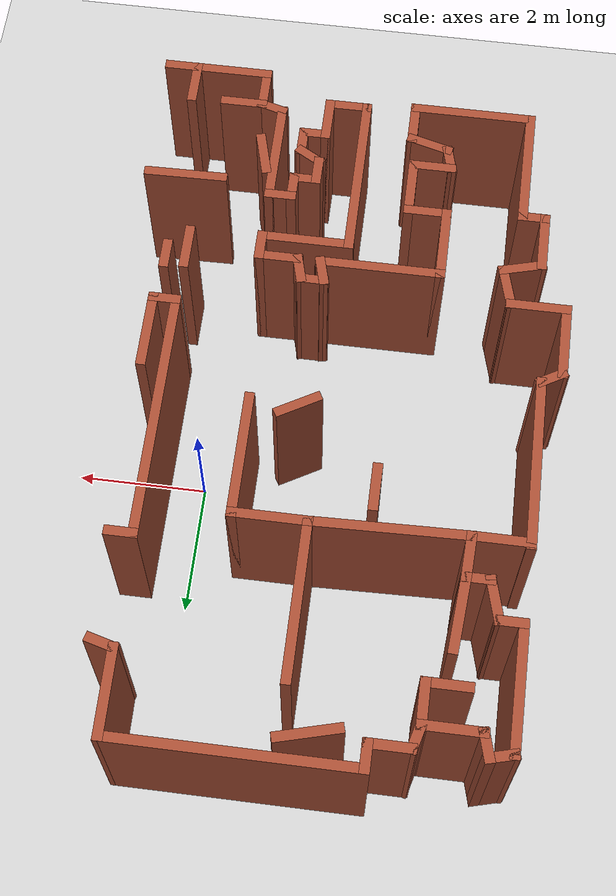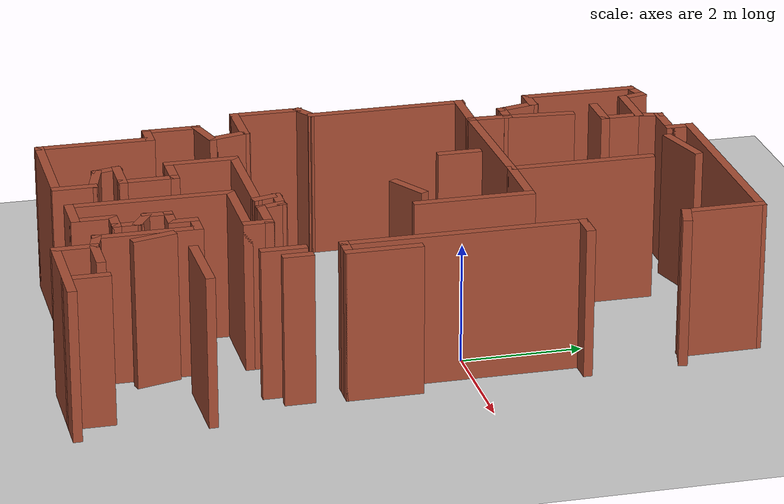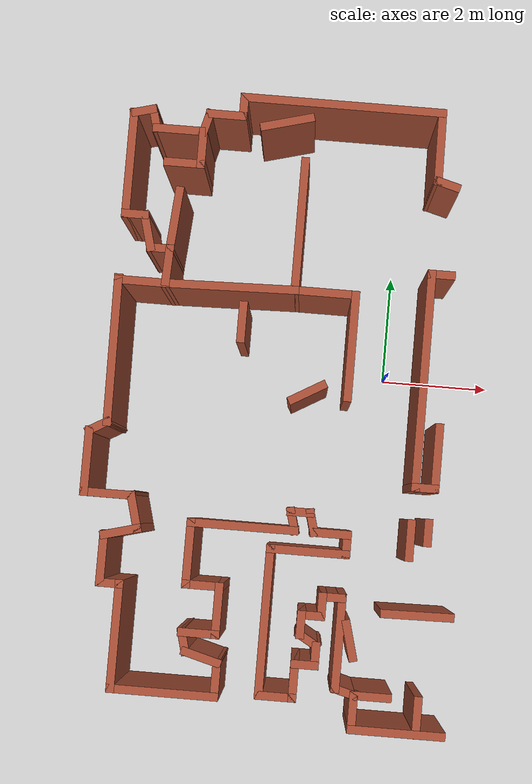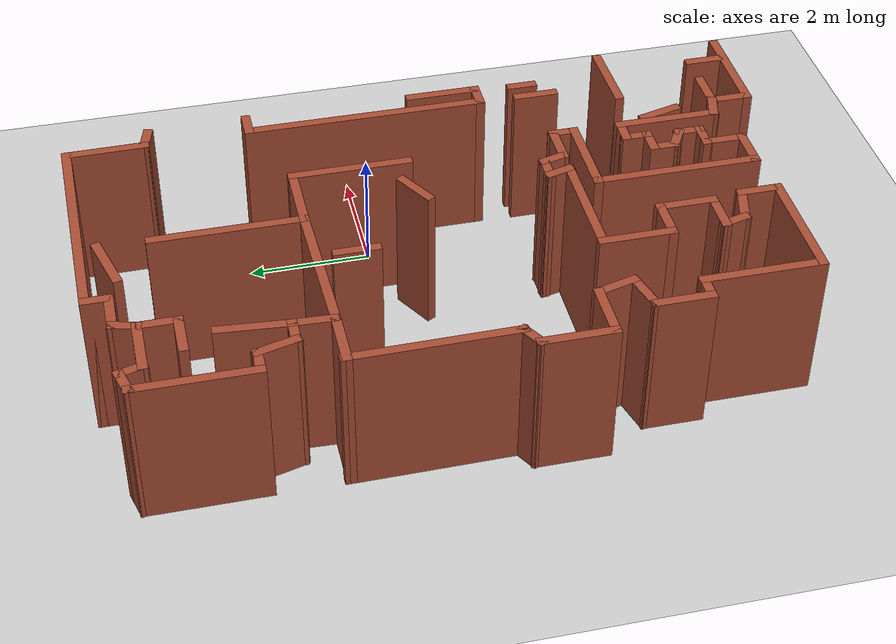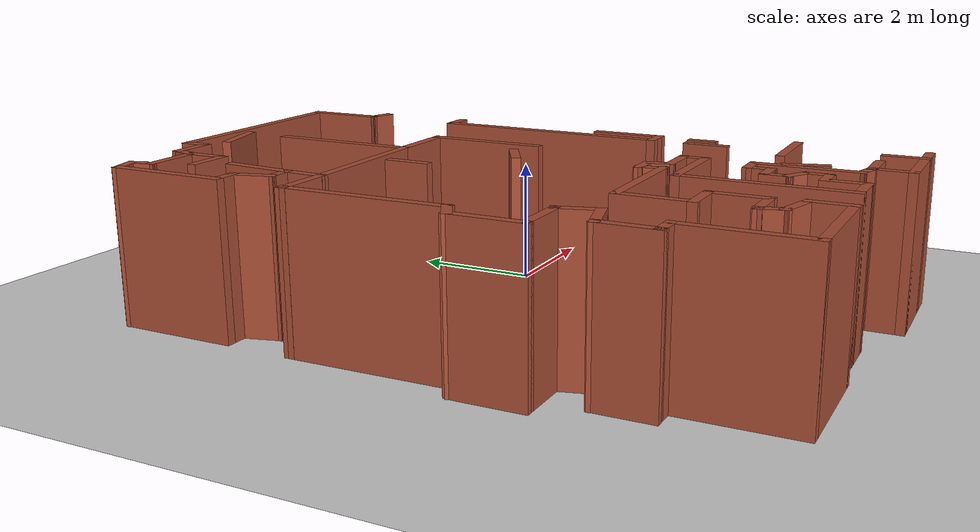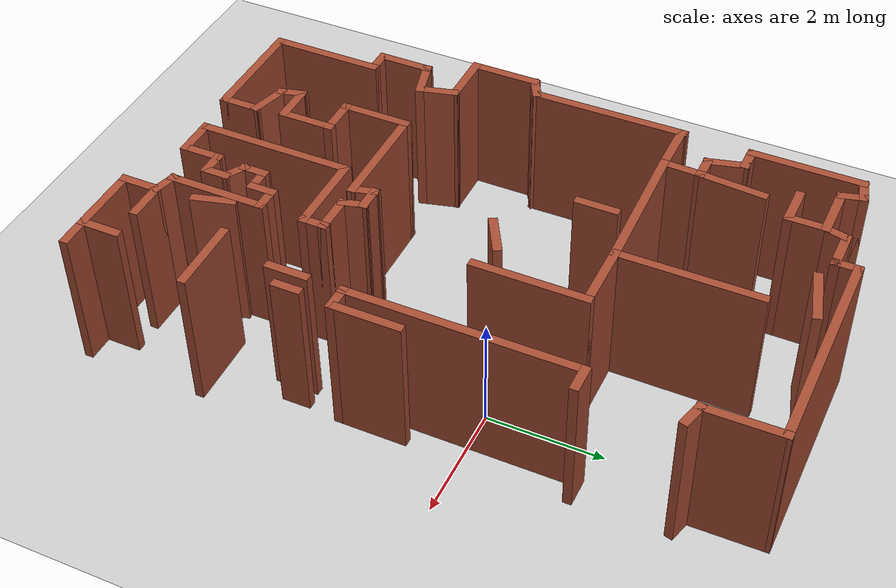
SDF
<sdf version="1.6">
 <world name="default">
  <model name="ground_plane">
   <static>1</static>
   <link name="link">
    <collision name="collision">
     <geometry><plane><normal>0 0 1</normal><size>100 100</size></plane></geometry>
     <surface>
      <contact><collide_bitmask>65535</collide_bitmask></contact>
      <friction><ode><mu>100</mu><mu2>50</mu2></ode></friction>
     </surface>
    </collision>
    <visual name="visual">
     <cast_shadows>0</cast_shadows>
     <geometry><plane><normal>0 0 1</normal><size>100 100</size></plane></geometry>
     <material>
      <script><uri>file://media/materials/scripts/gazebo.material</uri><name>Gazebo/Grey</name></script>
     </material>
    </visual>
   </link>
  </model>
  <model name="map_29">
   <pose>1.33629 -0.887991 0 0 -0 0</pose>
   <link name="Wall_0">
    <collision name="Wall_0_Collision">
     <geometry><box><size>3.75 0.15 2.5</size></box></geometry>
     <pose>0 0 1.25 0 -0 0</pose>
    </collision>
    <visual name="Wall_0_Visual">
     <pose>0 0 1.25 0 -0 0</pose>
     <geometry><box><size>3.75 0.15 2.5</size></box></geometry>
     <material>
      <script><uri>file://media/materials/scripts/gazebo.material</uri><name>Gazebo/Bricks</name></script>
      <ambient>1 1 1 1</ambient>
     </material>
     <meta><layer>0</layer></meta>
    </visual>
    <pose>-2.54851 5.6282 0 0 -0 3.14159</pose>
   </link>
   <link name="Wall_10">
    <collision name="Wall_10_Collision">
     <geometry><box><size>2 0.15 2.5</size></box></geometry>
     <pose>0 0 1.25 0 -0 0</pose>
    </collision>
    <visual name="Wall_10_Visual">
     <pose>0 0 1.25 0 -0 0</pose>
     <geometry><box><size>2 0.15 2.5</size></box></geometry>
     <material>
      <script><uri>file://media/materials/scripts/gazebo.material</uri><name>Gazebo/Bricks</name></script>
      <ambient>1 1 1 1</ambient>
     </material>
     <meta><layer>0</layer></meta>
    </visual>
    <pose>-6.31776 4.26261 0 0 -0 -1.5708</pose>
   </link>
   <link name="Wall_108">
    <collision name="Wall_108_Collision">
     <geometry><box><size>0.75 0.15 2.5</size></box></geometry>
     <pose>0 0 1.25 0 -0 0</pose>
    </collision>
    <visual name="Wall_108_Visual">
     <pose>0 0 1.25 0 -0 0</pose>
     <geometry><box><size>0.75 0.15 2.5</size></box></geometry>
     <material>
      <script><uri>file://media/materials/scripts/gazebo.material</uri><name>Gazebo/Bricks</name></script>
      <ambient>1 1 1 1</ambient>
     </material>
     <meta><layer>0</layer></meta>
    </visual>
    <pose>-0.736808 -2.1126 0 0 -0 1.5708</pose>
   </link>
   <link name="Wall_11">
    <collision name="Wall_11_Collision">
     <geometry><box><size>0.5 0.15 2.5</size></box></geometry>
     <pose>0 0 1.25 0 -0 0</pose>
    </collision>
    <visual name="Wall_11_Visual">
     <pose>0 0 1.25 0 -0 0</pose>
     <geometry><box><size>0.5 0.15 2.5</size></box></geometry>
     <material>
      <script><uri>file://media/materials/scripts/gazebo.material</uri><name>Gazebo/Bricks</name></script>
      <ambient>1 1 1 1</ambient>
     </material>
     <meta><layer>0</layer></meta>
    </visual>
    <pose>-6.14276 3.33761 0 0 -0 0</pose>
   </link>
   <link name="Wall_111">
    <collision name="Wall_111_Collision">
     <geometry><box><size>0.5 0.15 2.5</size></box></geometry>
     <pose>0 0 1.25 0 -0 0</pose>
    </collision>
    <visual name="Wall_111_Visual">
     <pose>0 0 1.25 0 -0 0</pose>
     <geometry><box><size>0.5 0.15 2.5</size></box></geometry>
     <material>
      <script><uri>file://media/materials/scripts/gazebo.material</uri><name>Gazebo/Bricks</name></script>
      <ambient>1 1 1 1</ambient>
     </material>
     <meta><layer>0</layer></meta>
    </visual>
    <pose>-0.431108 -1.9528 0 0 -0 -1.5708</pose>
   </link>
   <link name="Wall_15">
    <collision name="Wall_15_Collision">
     <geometry><box><size>0.75 0.15 2.5</size></box></geometry>
     <pose>0 0 1.25 0 -0 0</pose>
    </collision>
    <visual name="Wall_15_Visual">
     <pose>0 0 1.25 0 -0 0</pose>
     <geometry><box><size>0.75 0.15 2.5</size></box></geometry>
     <material>
      <script><uri>file://media/materials/scripts/gazebo.material</uri><name>Gazebo/Bricks</name></script>
      <ambient>1 1 1 1</ambient>
     </material>
     <meta><layer>0</layer></meta>
    </visual>
    <pose>-5.89011 3.04783 0 0 -0 -1.309</pose>
   </link>
   <link name="Wall_153">
    <collision name="Wall_153_Collision">
     <geometry><box><size>1.25 0.15 2.5</size></box></geometry>
     <pose>0 0 1.25 0 -0 0</pose>
    </collision>
    <visual name="Wall_153_Visual">
     <pose>0 0 1.25 0 -0 0</pose>
     <geometry><box><size>1.25 0.15 2.5</size></box></geometry>
     <material>
      <script><uri>file://media/materials/scripts/gazebo.material</uri><name>Gazebo/Bricks</name></script>
      <ambient>1 1 1 1</ambient>
     </material>
     <meta><layer>0</layer></meta>
    </visual>
    <pose>-0.368319 -0.613111 0 0 -0 -1.5708</pose>
   </link>
   <link name="Wall_154">
    <collision name="Wall_154_Collision">
     <geometry><box><size>0.5 0.15 2.5</size></box></geometry>
     <pose>0 0 1.25 0 -0 0</pose>
    </collision>
    <visual name="Wall_154_Visual">
     <pose>0 0 1.25 0 -0 0</pose>
     <geometry><box><size>0.5 0.15 2.5</size></box></geometry>
     <material>
      <script><uri>file://media/materials/scripts/gazebo.material</uri><name>Gazebo/Bricks</name></script>
      <ambient>1 1 1 1</ambient>
     </material>
     <meta><layer>0</layer></meta>
    </visual>
    <pose>-0.543319 -1.16311 0 0 -0 3.14159</pose>
   </link>
   <link name="Wall_155">
    <collision name="Wall_155_Collision">
     <geometry><box><size>4 0.15 2.5</size></box></geometry>
     <pose>0 0 1.25 0 -0 0</pose>
    </collision>
    <visual name="Wall_155_Visual">
     <pose>0 0 1.25 0 -0 0</pose>
     <geometry><box><size>4 0.15 2.5</size></box></geometry>
     <material>
      <script><uri>file://media/materials/scripts/gazebo.material</uri><name>Gazebo/Bricks</name></script>
      <ambient>1 1 1 1</ambient>
     </material>
     <meta><layer>0</layer></meta>
    </visual>
    <pose>-0.718319 0.761889 0 0 -0 1.5708</pose>
   </link>
   <link name="Wall_156">
    <collision name="Wall_156_Collision">
     <geometry><box><size>0.5 0.15 2.5</size></box></geometry>
     <pose>0 0 1.25 0 -0 0</pose>
    </collision>
    <visual name="Wall_156_Visual">
     <pose>0 0 1.25 0 -0 0</pose>
     <geometry><box><size>0.5 0.15 2.5</size></box></geometry>
     <material>
      <script><uri>file://media/materials/scripts/gazebo.material</uri><name>Gazebo/Bricks</name></script>
      <ambient>1 1 1 1</ambient>
     </material>
     <meta><layer>0</layer></meta>
    </visual>
    <pose>-0.543319 2.68689 0 0 -0 0</pose>
   </link>
   <link name="Wall_16">
    <collision name="Wall_16_Collision">
     <geometry><box><size>0.5 0.15 2.5</size></box></geometry>
     <pose>0 0 1.25 0 -0 0</pose>
    </collision>
    <visual name="Wall_16_Visual">
     <pose>0 0 1.25 0 -0 0</pose>
     <geometry><box><size>0.5 0.15 2.5</size></box></geometry>
     <material>
      <script><uri>file://media/materials/scripts/gazebo.material</uri><name>Gazebo/Bricks</name></script>
      <ambient>1 1 1 1</ambient>
     </material>
     <meta><layer>0</layer></meta>
    </visual>
    <pose>-5.63746 2.75806 0 0 -0 0</pose>
   </link>
   <link name="Wall_17">
    <collision name="Wall_17_Collision">
     <geometry><box><size>0.750583 0.15 2.5</size></box></geometry>
     <pose>0 0 1.25 0 -0 0</pose>
    </collision>
    <visual name="Wall_17_Visual">
     <pose>0 0 1.25 0 -0 0</pose>
     <geometry><box><size>0.750583 0.15 2.5</size></box></geometry>
     <material>
      <script><uri>file://media/materials/scripts/gazebo.material</uri><name>Gazebo/Bricks</name></script>
      <ambient>1 1 1 1</ambient>
     </material>
     <meta><layer>0</layer></meta>
    </visual>
    <pose>-5.47569 2.45805 0 0 -0 -1.61485</pose>
   </link>
   <link name="Wall_175">
    <collision name="Wall_175_Collision">
     <geometry><box><size>0.5 0.15 2.5</size></box></geometry>
     <pose>0 0 1.25 0 -0 0</pose>
    </collision>
    <visual name="Wall_175_Visual">
     <pose>0 0 1.25 0 -0 0</pose>
     <geometry><box><size>0.5 0.15 2.5</size></box></geometry>
     <material>
      <script><uri>file://media/materials/scripts/gazebo.material</uri><name>Gazebo/Bricks</name></script>
      <ambient>1 1 1 1</ambient>
     </material>
     <meta><layer>0</layer></meta>
    </visual>
    <pose>-0.56703 4.33704 0 0 -0 2.87979</pose>
   </link>
   <link name="Wall_176">
    <collision name="Wall_176_Collision">
     <geometry><box><size>1.39593 0.15 2.5</size></box></geometry>
     <pose>0 0 1.25 0 -0 0</pose>
    </collision>
    <visual name="Wall_176_Visual">
     <pose>0 0 1.25 0 -0 0</pose>
     <geometry><box><size>1.39593 0.15 2.5</size></box></geometry>
     <material>
      <script><uri>file://media/materials/scripts/gazebo.material</uri><name>Gazebo/Bricks</name></script>
      <ambient>1 1 1 1</ambient>
     </material>
     <meta><layer>0</layer></meta>
    </visual>
    <pose>-0.742287 5.00527 0 0 -0 1.58078</pose>
   </link>
   <link name="Wall_178">
    <collision name="Wall_178_Collision">
     <geometry><box><size>1 0.15 2.5</size></box></geometry>
     <pose>0 0 1.25 0 -0 0</pose>
    </collision>
    <visual name="Wall_178_Visual">
     <pose>0 0 1.25 0 -0 0</pose>
     <geometry><box><size>1 0.15 2.5</size></box></geometry>
     <material>
      <script><uri>file://media/materials/scripts/gazebo.material</uri><name>Gazebo/Bricks</name></script>
      <ambient>1 1 1 1</ambient>
     </material>
     <meta><layer>0</layer></meta>
    </visual>
    <pose>-3.53844 5.23565 0 0 -0 0.261799</pose>
   </link>
   <link name="Wall_180">
    <collision name="Wall_180_Collision">
     <geometry><box><size>2.5 0.15 2.5</size></box></geometry>
     <pose>0 0 1.25 0 -0 0</pose>
    </collision>
    <visual name="Wall_180_Visual">
     <pose>0 0 1.25 0 -0 0</pose>
     <geometry><box><size>2.5 0.15 2.5</size></box></geometry>
     <material>
      <script><uri>file://media/materials/scripts/gazebo.material</uri><name>Gazebo/Bricks</name></script>
      <ambient>1 1 1 1</ambient>
     </material>
     <meta><layer>0</layer></meta>
    </visual>
    <pose>-3.15546 3.36875 0 0 -0 -1.5708</pose>
   </link>
   <link name="Wall_182">
    <collision name="Wall_182_Collision">
     <geometry><box><size>1.22492 0.15 2.5</size></box></geometry>
     <pose>0 0 1.25 0 -0 0</pose>
    </collision>
    <visual name="Wall_182_Visual">
     <pose>0 0 1.25 0 -0 0</pose>
     <geometry><box><size>1.22492 0.15 2.5</size></box></geometry>
     <material>
      <script><uri>file://media/materials/scripts/gazebo.material</uri><name>Gazebo/Bricks</name></script>
      <ambient>1 1 1 1</ambient>
     </material>
     <meta><layer>0</layer></meta>
    </visual>
    <pose>-5.41986 3.29383 0 0 -0 -1.65015</pose>
   </link>
   <link name="Wall_184">
    <collision name="Wall_184_Collision">
     <geometry><box><size>0.75 0.15 2.5</size></box></geometry>
     <pose>0 0 1.25 0 -0 0</pose>
    </collision>
    <visual name="Wall_184_Visual">
     <pose>0 0 1.25 0 -0 0</pose>
     <geometry><box><size>0.75 0.15 2.5</size></box></geometry>
     <material>
      <script><uri>file://media/materials/scripts/gazebo.material</uri><name>Gazebo/Bricks</name></script>
      <ambient>1 1 1 1</ambient>
     </material>
     <meta><layer>0</layer></meta>
    </visual>
    <pose>-5.03909 4.64012 0 0 -0 -1.5708</pose>
   </link>
   <link name="Wall_185">
    <collision name="Wall_185_Collision">
     <geometry><box><size>0.75 0.15 2.5</size></box></geometry>
     <pose>0 0 1.25 0 -0 0</pose>
    </collision>
    <visual name="Wall_185_Visual">
     <pose>0 0 1.25 0 -0 0</pose>
     <geometry><box><size>0.75 0.15 2.5</size></box></geometry>
     <material>
      <script><uri>file://media/materials/scripts/gazebo.material</uri><name>Gazebo/Bricks</name></script>
      <ambient>1 1 1 1</ambient>
     </material>
     <meta><layer>0</layer></meta>
    </visual>
    <pose>-5.33909 4.34012 0 0 -0 3.14159</pose>
   </link>
   <link name="Wall_187">
    <collision name="Wall_187_Collision">
     <geometry><box><size>0.75 0.15 2.5</size></box></geometry>
     <pose>0 0 1.25 0 -0 0</pose>
    </collision>
    <visual name="Wall_187_Visual">
     <pose>0 0 1.25 0 -0 0</pose>
     <geometry><box><size>0.75 0.15 2.5</size></box></geometry>
     <material>
      <script><uri>file://media/materials/scripts/gazebo.material</uri><name>Gazebo/Bricks</name></script>
      <ambient>1 1 1 1</ambient>
     </material>
     <meta><layer>0</layer></meta>
    </visual>
    <pose>-4.05476 1.54585 0 0 -0 -1.5708</pose>
   </link>
   <link name="Wall_190">
    <collision name="Wall_190_Collision">
     <geometry><box><size>2.48428 0.15 2.5</size></box></geometry>
     <pose>0 0 1.25 0 -0 0</pose>
    </collision>
    <visual name="Wall_190_Visual">
     <pose>0 0 1.25 0 -0 0</pose>
     <geometry><box><size>2.48428 0.15 2.5</size></box></geometry>
     <material>
      <script><uri>file://media/materials/scripts/gazebo.material</uri><name>Gazebo/Bricks</name></script>
      <ambient>1 1 1 1</ambient>
     </material>
     <meta><layer>0</layer></meta>
    </visual>
    <pose>-4.32219 2.16268 0 0 -0 0.026625</pose>
   </link>
   <link name="Wall_192">
    <collision name="Wall_192_Collision">
     <geometry><box><size>1.25 0.15 2.5</size></box></geometry>
     <pose>0 0 1.25 0 -0 0</pose>
    </collision>
    <visual name="Wall_192_Visual">
     <pose>0 0 1.25 0 -0 0</pose>
     <geometry><box><size>1.25 0.15 2.5</size></box></geometry>
     <material>
      <script><uri>file://media/materials/scripts/gazebo.material</uri><name>Gazebo/Bricks</name></script>
      <ambient>1 1 1 1</ambient>
     </material>
     <meta><layer>0</layer></meta>
    </visual>
    <pose>-2.60546 2.19375 0 0 -0 0</pose>
   </link>
   <link name="Wall_193">
    <collision name="Wall_193_Collision">
     <geometry><box><size>2 0.15 2.5</size></box></geometry>
     <pose>0 0 1.25 0 -0 0</pose>
    </collision>
    <visual name="Wall_193_Visual">
     <pose>0 0 1.25 0 -0 0</pose>
     <geometry><box><size>2 0.15 2.5</size></box></geometry>
     <material>
      <script><uri>file://media/materials/scripts/gazebo.material</uri><name>Gazebo/Bricks</name></script>
      <ambient>1 1 1 1</ambient>
     </material>
     <meta><layer>0</layer></meta>
    </visual>
    <pose>-2.05546 1.26875 0 0 -0 -1.5708</pose>
   </link>
   <link name="Wall_195">
    <collision name="Wall_195_Collision">
     <geometry><box><size>0.75 0.15 2.5</size></box></geometry>
     <pose>0 0 1.25 0 -0 0</pose>
    </collision>
    <visual name="Wall_195_Visual">
     <pose>0 0 1.25 0 -0 0</pose>
     <geometry><box><size>0.75 0.15 2.5</size></box></geometry>
     <material>
      <script><uri>file://media/materials/scripts/gazebo.material</uri><name>Gazebo/Bricks</name></script>
      <ambient>1 1 1 1</ambient>
     </material>
     <meta><layer>0</layer></meta>
    </visual>
    <pose>-2.78046 0.373348 0 0 -0 -2.61799</pose>
   </link>
   <link name="Wall_20">
    <collision name="Wall_20_Collision">
     <geometry><box><size>1 0.15 2.5</size></box></geometry>
     <pose>0 0 1.25 0 -0 0</pose>
    </collision>
    <visual name="Wall_20_Visual">
     <pose>0 0 1.25 0 -0 0</pose>
     <geometry><box><size>1 0.15 2.5</size></box></geometry>
     <material>
      <script><uri>file://media/materials/scripts/gazebo.material</uri><name>Gazebo/Bricks</name></script>
      <ambient>1 1 1 1</ambient>
     </material>
     <meta><layer>0</layer></meta>
    </visual>
    <pose>-5.91391 2.1316 0 0 -0 3.14159</pose>
   </link>
   <link name="Wall_206">
    <collision name="Wall_206_Collision">
     <geometry><box><size>0.75 0.15 2.5</size></box></geometry>
     <pose>0 0 1.25 0 -0 0</pose>
    </collision>
    <visual name="Wall_206_Visual">
     <pose>0 0 1.25 0 -0 0</pose>
     <geometry><box><size>0.75 0.15 2.5</size></box></geometry>
     <material>
      <script><uri>file://media/materials/scripts/gazebo.material</uri><name>Gazebo/Bricks</name></script>
      <ambient>1 1 1 1</ambient>
     </material>
     <meta><layer>0</layer></meta>
    </visual>
    <pose>-1.67596 -3.97198 0 0 -0 -1.309</pose>
   </link>
   <link name="Wall_21">
    <collision name="Wall_21_Collision">
     <geometry><box><size>2.75014 0.15 2.5</size></box></geometry>
     <pose>0 0 1.25 0 -0 0</pose>
    </collision>
    <visual name="Wall_21_Visual">
     <pose>0 0 1.25 0 -0 0</pose>
     <geometry><box><size>2.75014 0.15 2.5</size></box></geometry>
     <material>
      <script><uri>file://media/materials/scripts/gazebo.material</uri><name>Gazebo/Bricks</name></script>
      <ambient>1 1 1 1</ambient>
     </material>
     <meta><layer>0</layer></meta>
    </visual>
    <pose>-6.32569 0.858055 0 0 -0 -1.56062</pose>
   </link>
   <link name="Wall_210">
    <collision name="Wall_210_Collision">
     <geometry><box><size>0.75 0.15 2.5</size></box></geometry>
     <pose>0 0 1.25 0 -0 0</pose>
    </collision>
    <visual name="Wall_210_Visual">
     <pose>0 0 1.25 0 -0 0</pose>
     <geometry><box><size>0.75 0.15 2.5</size></box></geometry>
     <material>
      <script><uri>file://media/materials/scripts/gazebo.material</uri><name>Gazebo/Bricks</name></script>
      <ambient>1 1 1 1</ambient>
     </material>
     <meta><layer>0</layer></meta>
    </visual>
    <pose>-1.22501 -4.92401 0 0 -0 0</pose>
   </link>
   <link name="Wall_212">
    <collision name="Wall_212_Collision">
     <geometry><box><size>0.75 0.15 2.5</size></box></geometry>
     <pose>0 0 1.25 0 -0 0</pose>
    </collision>
    <visual name="Wall_212_Visual">
     <pose>0 0 1.25 0 -0 0</pose>
     <geometry><box><size>0.75 0.15 2.5</size></box></geometry>
     <material>
      <script><uri>file://media/materials/scripts/gazebo.material</uri><name>Gazebo/Bricks</name></script>
      <ambient>1 1 1 1</ambient>
     </material>
     <meta><layer>0</layer></meta>
    </visual>
    <pose>-0.378208 -5.22535 0 0 -0 -1.5708</pose>
   </link>
   <link name="Wall_22">
    <collision name="Wall_22_Collision">
     <geometry><box><size>0.5 0.15 2.5</size></box></geometry>
     <pose>0 0 1.25 0 -0 0</pose>
    </collision>
    <visual name="Wall_22_Visual">
     <pose>0 0 1.25 0 -0 0</pose>
     <geometry><box><size>0.5 0.15 2.5</size></box></geometry>
     <material>
      <script><uri>file://media/materials/scripts/gazebo.material</uri><name>Gazebo/Bricks</name></script>
      <ambient>1 1 1 1</ambient>
     </material>
     <meta><layer>0</layer></meta>
    </visual>
    <pose>-6.46402 -0.529445 0 0 -0 -2.61799</pose>
   </link>
   <link name="Wall_23">
    <collision name="Wall_23_Collision">
     <geometry><box><size>1.25 0.15 2.5</size></box></geometry>
     <pose>0 0 1.25 0 -0 0</pose>
    </collision>
    <visual name="Wall_23_Visual">
     <pose>0 0 1.25 0 -0 0</pose>
     <geometry><box><size>1.25 0.15 2.5</size></box></geometry>
     <material>
      <script><uri>file://media/materials/scripts/gazebo.material</uri><name>Gazebo/Bricks</name></script>
      <ambient>1 1 1 1</ambient>
     </material>
     <meta><layer>0</layer></meta>
    </visual>
    <pose>-6.61557 -1.16694 0 0 -0 -1.5708</pose>
   </link>
   <link name="Wall_24">
    <collision name="Wall_24_Collision">
     <geometry><box><size>1 0.15 2.5</size></box></geometry>
     <pose>0 0 1.25 0 -0 0</pose>
    </collision>
    <visual name="Wall_24_Visual">
     <pose>0 0 1.25 0 -0 0</pose>
     <geometry><box><size>1 0.15 2.5</size></box></geometry>
     <material>
      <script><uri>file://media/materials/scripts/gazebo.material</uri><name>Gazebo/Bricks</name></script>
      <ambient>1 1 1 1</ambient>
     </material>
     <meta><layer>0</layer></meta>
    </visual>
    <pose>-6.19057 -1.71694 0 0 -0 0</pose>
   </link>
   <link name="Wall_25">
    <collision name="Wall_25_Collision">
     <geometry><box><size>0.75 0.15 2.5</size></box></geometry>
     <pose>0 0 1.25 0 -0 0</pose>
    </collision>
    <visual name="Wall_25_Visual">
     <pose>0 0 1.25 0 -0 0</pose>
     <geometry><box><size>0.75 0.15 2.5</size></box></geometry>
     <material>
      <script><uri>file://media/materials/scripts/gazebo.material</uri><name>Gazebo/Bricks</name></script>
      <ambient>1 1 1 1</ambient>
     </material>
     <meta><layer>0</layer></meta>
    </visual>
    <pose>-5.68793 -2.00672 0 0 -0 -1.309</pose>
   </link>
   <link name="Wall_26">
    <collision name="Wall_26_Collision">
     <geometry><box><size>0.75 0.15 2.5</size></box></geometry>
     <pose>0 0 1.25 0 -0 0</pose>
    </collision>
    <visual name="Wall_26_Visual">
     <pose>0 0 1.25 0 -0 0</pose>
     <geometry><box><size>0.75 0.15 2.5</size></box></geometry>
     <material>
      <script><uri>file://media/materials/scripts/gazebo.material</uri><name>Gazebo/Bricks</name></script>
      <ambient>1 1 1 1</ambient>
     </material>
     <meta><layer>0</layer></meta>
    </visual>
    <pose>-5.90006 -2.37415 0 0 -0 -2.87979</pose>
   </link>
   <link name="Wall_27">
    <collision name="Wall_27_Collision">
     <geometry><box><size>1 0.15 2.5</size></box></geometry>
     <pose>0 0 1.25 0 -0 0</pose>
    </collision>
    <visual name="Wall_27_Visual">
     <pose>0 0 1.25 0 -0 0</pose>
     <geometry><box><size>1 0.15 2.5</size></box></geometry>
     <material>
      <script><uri>file://media/materials/scripts/gazebo.material</uri><name>Gazebo/Bricks</name></script>
      <ambient>1 1 1 1</ambient>
     </material>
     <meta><layer>0</layer></meta>
    </visual>
    <pose>-6.18984 -2.87679 0 0 -0 -1.5708</pose>
   </link>
   <link name="Wall_28">
    <collision name="Wall_28_Collision">
     <geometry><box><size>0.5 0.15 2.5</size></box></geometry>
     <pose>0 0 1.25 0 -0 0</pose>
    </collision>
    <visual name="Wall_28_Visual">
     <pose>0 0 1.25 0 -0 0</pose>
     <geometry><box><size>0.5 0.15 2.5</size></box></geometry>
     <material>
      <script><uri>file://media/materials/scripts/gazebo.material</uri><name>Gazebo/Bricks</name></script>
      <ambient>1 1 1 1</ambient>
     </material>
     <meta><layer>0</layer></meta>
    </visual>
    <pose>-6.01484 -3.30179 0 0 -0 0</pose>
   </link>
   <link name="Wall_29">
    <collision name="Wall_29_Collision">
     <geometry><box><size>2 0.15 2.5</size></box></geometry>
     <pose>0 0 1.25 0 -0 0</pose>
    </collision>
    <visual name="Wall_29_Visual">
     <pose>0 0 1.25 0 -0 0</pose>
     <geometry><box><size>2 0.15 2.5</size></box></geometry>
     <material>
      <script><uri>file://media/materials/scripts/gazebo.material</uri><name>Gazebo/Bricks</name></script>
      <ambient>1 1 1 1</ambient>
     </material>
     <meta><layer>0</layer></meta>
    </visual>
    <pose>-5.83984 -4.22679 0 0 -0 -1.5708</pose>
   </link>
   <link name="Wall_30">
    <collision name="Wall_30_Collision">
     <geometry><box><size>2 0.15 2.5</size></box></geometry>
     <pose>0 0 1.25 0 -0 0</pose>
    </collision>
    <visual name="Wall_30_Visual">
     <pose>0 0 1.25 0 -0 0</pose>
     <geometry><box><size>2 0.15 2.5</size></box></geometry>
     <material>
      <script><uri>file://media/materials/scripts/gazebo.material</uri><name>Gazebo/Bricks</name></script>
      <ambient>1 1 1 1</ambient>
     </material>
     <meta><layer>0</layer></meta>
    </visual>
    <pose>-4.91484 -5.15179 0 0 -0 0</pose>
   </link>
   <link name="Wall_31">
    <collision name="Wall_31_Collision">
     <geometry><box><size>0.75 0.15 2.5</size></box></geometry>
     <pose>0 0 1.25 0 -0 0</pose>
    </collision>
    <visual name="Wall_31_Visual">
     <pose>0 0 1.25 0 -0 0</pose>
     <geometry><box><size>0.75 0.15 2.5</size></box></geometry>
     <material>
      <script><uri>file://media/materials/scripts/gazebo.material</uri><name>Gazebo/Bricks</name></script>
      <ambient>1 1 1 1</ambient>
     </material>
     <meta><layer>0</layer></meta>
    </visual>
    <pose>-3.98984 -4.85179 0 0 -0 1.5708</pose>
   </link>
   <link name="Wall_32">
    <collision name="Wall_32_Collision">
     <geometry><box><size>0.75 0.15 2.5</size></box></geometry>
     <pose>0 0 1.25 0 -0 0</pose>
    </collision>
    <visual name="Wall_32_Visual">
     <pose>0 0 1.25 0 -0 0</pose>
     <geometry><box><size>0.75 0.15 2.5</size></box></geometry>
     <material>
      <script><uri>file://media/materials/scripts/gazebo.material</uri><name>Gazebo/Bricks</name></script>
      <ambient>1 1 1 1</ambient>
     </material>
     <meta><layer>0</layer></meta>
    </visual>
    <pose>-4.27961 -4.47415 0 0 -0 2.87979</pose>
   </link>
   <link name="Wall_33">
    <collision name="Wall_33_Collision">
     <geometry><box><size>0.5 0.15 2.5</size></box></geometry>
     <pose>0 0 1.25 0 -0 0</pose>
    </collision>
    <visual name="Wall_33_Visual">
     <pose>0 0 1.25 0 -0 0</pose>
     <geometry><box><size>0.5 0.15 2.5</size></box></geometry>
     <material>
      <script><uri>file://media/materials/scripts/gazebo.material</uri><name>Gazebo/Bricks</name></script>
      <ambient>1 1 1 1</ambient>
     </material>
     <meta><layer>0</layer></meta>
    </visual>
    <pose>-4.61469 -4.22746 0 0 -0 1.8326</pose>
   </link>
   <link name="Wall_34">
    <collision name="Wall_34_Collision">
     <geometry><box><size>0.75 0.15 2.5</size></box></geometry>
     <pose>0 0 1.25 0 -0 0</pose>
    </collision>
    <visual name="Wall_34_Visual">
     <pose>0 0 1.25 0 -0 0</pose>
     <geometry><box><size>0.75 0.15 2.5</size></box></geometry>
     <material>
      <script><uri>file://media/materials/scripts/gazebo.material</uri><name>Gazebo/Bricks</name></script>
      <ambient>1 1 1 1</ambient>
     </material>
     <meta><layer>0</layer></meta>
    </visual>
    <pose>-4.35998 -4.05843 0 0 -0 0</pose>
   </link>
   <link name="Wall_35">
    <collision name="Wall_35_Collision">
     <geometry><box><size>1 0.15 2.5</size></box></geometry>
     <pose>0 0 1.25 0 -0 0</pose>
    </collision>
    <visual name="Wall_35_Visual">
     <pose>0 0 1.25 0 -0 0</pose>
     <geometry><box><size>1 0.15 2.5</size></box></geometry>
     <material>
      <script><uri>file://media/materials/scripts/gazebo.material</uri><name>Gazebo/Bricks</name></script>
      <ambient>1 1 1 1</ambient>
     </material>
     <meta><layer>0</layer></meta>
    </visual>
    <pose>-4.05998 -3.63343 0 0 -0 1.5708</pose>
   </link>
   <link name="Wall_36">
    <collision name="Wall_36_Collision">
     <geometry><box><size>0.75 0.15 2.5</size></box></geometry>
     <pose>0 0 1.25 0 -0 0</pose>
    </collision>
    <visual name="Wall_36_Visual">
     <pose>0 0 1.25 0 -0 0</pose>
     <geometry><box><size>0.75 0.15 2.5</size></box></geometry>
     <material>
      <script><uri>file://media/materials/scripts/gazebo.material</uri><name>Gazebo/Bricks</name></script>
      <ambient>1 1 1 1</ambient>
     </material>
     <meta><layer>0</layer></meta>
    </visual>
    <pose>-4.35998 -3.20843 0 0 -0 3.14159</pose>
   </link>
   <link name="Wall_37">
    <collision name="Wall_37_Collision">
     <geometry><box><size>1.25 0.15 2.5</size></box></geometry>
     <pose>0 0 1.25 0 -0 0</pose>
    </collision>
    <visual name="Wall_37_Visual">
     <pose>0 0 1.25 0 -0 0</pose>
     <geometry><box><size>1.25 0.15 2.5</size></box></geometry>
     <material>
      <script><uri>file://media/materials/scripts/gazebo.material</uri><name>Gazebo/Bricks</name></script>
      <ambient>1 1 1 1</ambient>
     </material>
     <meta><layer>0</layer></meta>
    </visual>
    <pose>-4.65998 -2.65843 0 0 -0 1.5708</pose>
   </link>
   <link name="Wall_38">
    <collision name="Wall_38_Collision">
     <geometry><box><size>2 0.15 2.5</size></box></geometry>
     <pose>0 0 1.25 0 -0 0</pose>
    </collision>
    <visual name="Wall_38_Visual">
     <pose>0 0 1.25 0 -0 0</pose>
     <geometry><box><size>2 0.15 2.5</size></box></geometry>
     <material>
      <script><uri>file://media/materials/scripts/gazebo.material</uri><name>Gazebo/Bricks</name></script>
      <ambient>1 1 1 1</ambient>
     </material>
     <meta><layer>0</layer></meta>
    </visual>
    <pose>-3.73498 -2.10843 0 0 -0 0</pose>
   </link>
   <link name="Wall_39">
    <collision name="Wall_39_Collision">
     <geometry><box><size>0.5 0.15 2.5</size></box></geometry>
     <pose>0 0 1.25 0 -0 0</pose>
    </collision>
    <visual name="Wall_39_Visual">
     <pose>0 0 1.25 0 -0 0</pose>
     <geometry><box><size>0.5 0.15 2.5</size></box></geometry>
     <material>
      <script><uri>file://media/materials/scripts/gazebo.material</uri><name>Gazebo/Bricks</name></script>
      <ambient>1 1 1 1</ambient>
     </material>
     <meta><layer>0</layer></meta>
    </visual>
    <pose>-2.85527 -1.93939 0 0 -0 1.8326</pose>
   </link>
   <link name="Wall_4">
    <collision name="Wall_4_Collision">
     <geometry><box><size>0.5 0.15 2.5</size></box></geometry>
     <pose>0 0 1.25 0 -0 0</pose>
    </collision>
    <visual name="Wall_4_Visual">
     <pose>0 0 1.25 0 -0 0</pose>
     <geometry><box><size>0.5 0.15 2.5</size></box></geometry>
     <material>
      <script><uri>file://media/materials/scripts/gazebo.material</uri><name>Gazebo/Bricks</name></script>
      <ambient>1 1 1 1</ambient>
     </material>
     <meta><layer>0</layer></meta>
    </visual>
    <pose>-4.34851 5.4532 0 0 -0 -1.5708</pose>
   </link>
   <link name="Wall_40">
    <collision name="Wall_40_Collision">
     <geometry><box><size>0.5 0.15 2.5</size></box></geometry>
     <pose>0 0 1.25 0 -0 0</pose>
    </collision>
    <visual name="Wall_40_Visual">
     <pose>0 0 1.25 0 -0 0</pose>
     <geometry><box><size>0.5 0.15 2.5</size></box></geometry>
     <material>
      <script><uri>file://media/materials/scripts/gazebo.material</uri><name>Gazebo/Bricks</name></script>
      <ambient>1 1 1 1</ambient>
     </material>
     <meta><layer>0</layer></meta>
    </visual>
    <pose>-2.72557 -1.77035 0 0 -0 0</pose>
   </link>
   <link name="Wall_41">
    <collision name="Wall_41_Collision">
     <geometry><box><size>0.5 0.15 2.5</size></box></geometry>
     <pose>0 0 1.25 0 -0 0</pose>
    </collision>
    <visual name="Wall_41_Visual">
     <pose>0 0 1.25 0 -0 0</pose>
     <geometry><box><size>0.5 0.15 2.5</size></box></geometry>
     <material>
      <script><uri>file://media/materials/scripts/gazebo.material</uri><name>Gazebo/Bricks</name></script>
      <ambient>1 1 1 1</ambient>
     </material>
     <meta><layer>0</layer></meta>
    </visual>
    <pose>-2.50527 -1.93939 0 0 -0 -1.309</pose>
   </link>
   <link name="Wall_42">
    <collision name="Wall_42_Collision">
     <geometry><box><size>0.75 0.15 2.5</size></box></geometry>
     <pose>0 0 1.25 0 -0 0</pose>
    </collision>
    <visual name="Wall_42_Visual">
     <pose>0 0 1.25 0 -0 0</pose>
     <geometry><box><size>0.75 0.15 2.5</size></box></geometry>
     <material>
      <script><uri>file://media/materials/scripts/gazebo.material</uri><name>Gazebo/Bricks</name></script>
      <ambient>1 1 1 1</ambient>
     </material>
     <meta><layer>0</layer></meta>
    </visual>
    <pose>-2.15998 -2.10843 0 0 -0 0</pose>
   </link>
   <link name="Wall_43">
    <collision name="Wall_43_Collision">
     <geometry><box><size>0.5 0.15 2.5</size></box></geometry>
     <pose>0 0 1.25 0 -0 0</pose>
    </collision>
    <visual name="Wall_43_Visual">
     <pose>0 0 1.25 0 -0 0</pose>
     <geometry><box><size>0.5 0.15 2.5</size></box></geometry>
     <material>
      <script><uri>file://media/materials/scripts/gazebo.material</uri><name>Gazebo/Bricks</name></script>
      <ambient>1 1 1 1</ambient>
     </material>
     <meta><layer>0</layer></meta>
    </visual>
    <pose>-1.85998 -2.28343 0 0 -0 -1.5708</pose>
   </link>
   <link name="Wall_44">
    <collision name="Wall_44_Collision">
     <geometry><box><size>1.5 0.15 2.5</size></box></geometry>
     <pose>0 0 1.25 0 -0 0</pose>
    </collision>
    <visual name="Wall_44_Visual">
     <pose>0 0 1.25 0 -0 0</pose>
     <geometry><box><size>1.5 0.15 2.5</size></box></geometry>
     <material>
      <script><uri>file://media/materials/scripts/gazebo.material</uri><name>Gazebo/Bricks</name></script>
      <ambient>1 1 1 1</ambient>
     </material>
     <meta><layer>0</layer></meta>
    </visual>
    <pose>-2.53498 -2.45843 0 0 -0 3.14159</pose>
   </link>
   <link name="Wall_45">
    <collision name="Wall_45_Collision">
     <geometry><box><size>2.75 0.15 2.5</size></box></geometry>
     <pose>0 0 1.25 0 -0 0</pose>
    </collision>
    <visual name="Wall_45_Visual">
     <pose>0 0 1.25 0 -0 0</pose>
     <geometry><box><size>2.75 0.15 2.5</size></box></geometry>
     <material>
      <script><uri>file://media/materials/scripts/gazebo.material</uri><name>Gazebo/Bricks</name></script>
      <ambient>1 1 1 1</ambient>
     </material>
     <meta><layer>0</layer></meta>
    </visual>
    <pose>-3.20998 -3.75843 0 0 -0 -1.5708</pose>
   </link>
   <link name="Wall_46">
    <collision name="Wall_46_Collision">
     <geometry><box><size>0.75 0.15 2.5</size></box></geometry>
     <pose>0 0 1.25 0 -0 0</pose>
    </collision>
    <visual name="Wall_46_Visual">
     <pose>0 0 1.25 0 -0 0</pose>
     <geometry><box><size>0.75 0.15 2.5</size></box></geometry>
     <material>
      <script><uri>file://media/materials/scripts/gazebo.material</uri><name>Gazebo/Bricks</name></script>
      <ambient>1 1 1 1</ambient>
     </material>
     <meta><layer>0</layer></meta>
    </visual>
    <pose>-2.90998 -5.05843 0 0 -0 0</pose>
   </link>
   <link name="Wall_47">
    <collision name="Wall_47_Collision">
     <geometry><box><size>0.75 0.15 2.5</size></box></geometry>
     <pose>0 0 1.25 0 -0 0</pose>
    </collision>
    <visual name="Wall_47_Visual">
     <pose>0 0 1.25 0 -0 0</pose>
     <geometry><box><size>0.75 0.15 2.5</size></box></geometry>
     <material>
      <script><uri>file://media/materials/scripts/gazebo.material</uri><name>Gazebo/Bricks</name></script>
      <ambient>1 1 1 1</ambient>
     </material>
     <meta><layer>0</layer></meta>
    </visual>
    <pose>-2.60998 -4.75843 0 0 -0 1.5708</pose>
   </link>
   <link name="Wall_48">
    <collision name="Wall_48_Collision">
     <geometry><box><size>0.5 0.15 2.5</size></box></geometry>
     <pose>0 0 1.25 0 -0 0</pose>
    </collision>
    <visual name="Wall_48_Visual">
     <pose>0 0 1.25 0 -0 0</pose>
     <geometry><box><size>0.5 0.15 2.5</size></box></geometry>
     <material>
      <script><uri>file://media/materials/scripts/gazebo.material</uri><name>Gazebo/Bricks</name></script>
      <ambient>1 1 1 1</ambient>
     </material>
     <meta><layer>0</layer></meta>
    </visual>
    <pose>-2.43498 -4.45843 0 0 -0 0</pose>
   </link>
   <link name="Wall_49">
    <collision name="Wall_49_Collision">
     <geometry><box><size>0.5 0.15 2.5</size></box></geometry>
     <pose>0 0 1.25 0 -0 0</pose>
    </collision>
    <visual name="Wall_49_Visual">
     <pose>0 0 1.25 0 -0 0</pose>
     <geometry><box><size>0.5 0.15 2.5</size></box></geometry>
     <material>
      <script><uri>file://media/materials/scripts/gazebo.material</uri><name>Gazebo/Bricks</name></script>
      <ambient>1 1 1 1</ambient>
     </material>
     <meta><layer>0</layer></meta>
    </visual>
    <pose>-2.25998 -4.28343 0 0 -0 1.5708</pose>
   </link>
   <link name="Wall_5">
    <collision name="Wall_5_Collision">
     <geometry><box><size>0.75 0.15 2.5</size></box></geometry>
     <pose>0 0 1.25 0 -0 0</pose>
    </collision>
    <visual name="Wall_5_Visual">
     <pose>0 0 1.25 0 -0 0</pose>
     <geometry><box><size>0.75 0.15 2.5</size></box></geometry>
     <material>
      <script><uri>file://media/materials/scripts/gazebo.material</uri><name>Gazebo/Bricks</name></script>
      <ambient>1 1 1 1</ambient>
     </material>
     <meta><layer>0</layer></meta>
    </visual>
    <pose>-4.64851 5.2782 0 0 -0 3.14159</pose>
   </link>
   <link name="Wall_50">
    <collision name="Wall_50_Collision">
     <geometry><box><size>0.5 0.15 2.5</size></box></geometry>
     <pose>0 0 1.25 0 -0 0</pose>
    </collision>
    <visual name="Wall_50_Visual">
     <pose>0 0 1.25 0 -0 0</pose>
     <geometry><box><size>0.5 0.15 2.5</size></box></geometry>
     <material>
      <script><uri>file://media/materials/scripts/gazebo.material</uri><name>Gazebo/Bricks</name></script>
      <ambient>1 1 1 1</ambient>
     </material>
     <meta><layer>0</layer></meta>
    </visual>
    <pose>-2.41153 -4.02093 0 0 -0 2.61799</pose>
   </link>
   <link name="Wall_51">
    <collision name="Wall_51_Collision">
     <geometry><box><size>0.5 0.15 2.5</size></box></geometry>
     <pose>0 0 1.25 0 -0 0</pose>
    </collision>
    <visual name="Wall_51_Visual">
     <pose>0 0 1.25 0 -0 0</pose>
     <geometry><box><size>0.5 0.15 2.5</size></box></geometry>
     <material>
      <script><uri>file://media/materials/scripts/gazebo.material</uri><name>Gazebo/Bricks</name></script>
      <ambient>1 1 1 1</ambient>
     </material>
     <meta><layer>0</layer></meta>
    </visual>
    <pose>-2.56309 -3.75843 0 0 -0 1.5708</pose>
   </link>
   <link name="Wall_52">
    <collision name="Wall_52_Collision">
     <geometry><box><size>0.5 0.15 2.5</size></box></geometry>
     <pose>0 0 1.25 0 -0 0</pose>
    </collision>
    <visual name="Wall_52_Visual">
     <pose>0 0 1.25 0 -0 0</pose>
     <geometry><box><size>0.5 0.15 2.5</size></box></geometry>
     <material>
      <script><uri>file://media/materials/scripts/gazebo.material</uri><name>Gazebo/Bricks</name></script>
      <ambient>1 1 1 1</ambient>
     </material>
     <meta><layer>0</layer></meta>
    </visual>
    <pose>-2.38809 -3.58343 0 0 -0 0</pose>
   </link>
   <link name="Wall_53">
    <collision name="Wall_53_Collision">
     <geometry><box><size>0.5 0.15 2.5</size></box></geometry>
     <pose>0 0 1.25 0 -0 0</pose>
    </collision>
    <visual name="Wall_53_Visual">
     <pose>0 0 1.25 0 -0 0</pose>
     <geometry><box><size>0.5 0.15 2.5</size></box></geometry>
     <material>
      <script><uri>file://media/materials/scripts/gazebo.material</uri><name>Gazebo/Bricks</name></script>
      <ambient>1 1 1 1</ambient>
     </material>
     <meta><layer>0</layer></meta>
    </visual>
    <pose>-2.21309 -3.40843 0 0 -0 1.5708</pose>
   </link>
   <link name="Wall_54">
    <collision name="Wall_54_Collision">
     <geometry><box><size>0.5 0.15 2.5</size></box></geometry>
     <pose>0 0 1.25 0 -0 0</pose>
    </collision>
    <visual name="Wall_54_Visual">
     <pose>0 0 1.25 0 -0 0</pose>
     <geometry><box><size>0.5 0.15 2.5</size></box></geometry>
     <material>
      <script><uri>file://media/materials/scripts/gazebo.material</uri><name>Gazebo/Bricks</name></script>
      <ambient>1 1 1 1</ambient>
     </material>
     <meta><layer>0</layer></meta>
    </visual>
    <pose>-2.03809 -3.23343 0 0 -0 0</pose>
   </link>
   <link name="Wall_55">
    <collision name="Wall_55_Collision">
     <geometry><box><size>1.75 0.15 2.5</size></box></geometry>
     <pose>0 0 1.25 0 -0 0</pose>
    </collision>
    <visual name="Wall_55_Visual">
     <pose>0 0 1.25 0 -0 0</pose>
     <geometry><box><size>1.75 0.15 2.5</size></box></geometry>
     <material>
      <script><uri>file://media/materials/scripts/gazebo.material</uri><name>Gazebo/Bricks</name></script>
      <ambient>1 1 1 1</ambient>
     </material>
     <meta><layer>0</layer></meta>
    </visual>
    <pose>-1.86309 -4.03343 0 0 -0 -1.5708</pose>
   </link>
   <link name="Wall_56">
    <collision name="Wall_56_Collision">
     <geometry><box><size>0.5 0.15 2.5</size></box></geometry>
     <pose>0 0 1.25 0 -0 0</pose>
    </collision>
    <visual name="Wall_56_Visual">
     <pose>0 0 1.25 0 -0 0</pose>
     <geometry><box><size>0.5 0.15 2.5</size></box></geometry>
     <material>
      <script><uri>file://media/materials/scripts/gazebo.material</uri><name>Gazebo/Bricks</name></script>
      <ambient>1 1 1 1</ambient>
     </material>
     <meta><layer>0</layer></meta>
    </visual>
    <pose>-1.69405 -4.87872 0 0 -0 -0.261799</pose>
   </link>
   <link name="Wall_57">
    <collision name="Wall_57_Collision">
     <geometry><box><size>0.75 0.15 2.5</size></box></geometry>
     <pose>0 0 1.25 0 -0 0</pose>
    </collision>
    <visual name="Wall_57_Visual">
     <pose>0 0 1.25 0 -0 0</pose>
     <geometry><box><size>0.75 0.15 2.5</size></box></geometry>
     <material>
      <script><uri>file://media/materials/scripts/gazebo.material</uri><name>Gazebo/Bricks</name></script>
      <ambient>1 1 1 1</ambient>
     </material>
     <meta><layer>0</layer></meta>
    </visual>
    <pose>-1.52501 -5.22401 0 0 -0 -1.5708</pose>
   </link>
   <link name="Wall_58">
    <collision name="Wall_58_Collision">
     <geometry><box><size>1.75 0.15 2.5</size></box></geometry>
     <pose>0 0 1.25 0 -0 0</pose>
    </collision>
    <visual name="Wall_58_Visual">
     <pose>0 0 1.25 0 -0 0</pose>
     <geometry><box><size>1.75 0.15 2.5</size></box></geometry>
     <material>
      <script><uri>file://media/materials/scripts/gazebo.material</uri><name>Gazebo/Bricks</name></script>
      <ambient>1 1 1 1</ambient>
     </material>
     <meta><layer>0</layer></meta>
    </visual>
    <pose>-0.725014 -5.52401 0 0 -0 0</pose>
   </link>
   <link name="Wall_6">
    <collision name="Wall_6_Collision">
     <geometry><box><size>0.5 0.15 2.5</size></box></geometry>
     <pose>0 0 1.25 0 -0 0</pose>
    </collision>
    <visual name="Wall_6_Visual">
     <pose>0 0 1.25 0 -0 0</pose>
     <geometry><box><size>0.5 0.15 2.5</size></box></geometry>
     <material>
      <script><uri>file://media/materials/scripts/gazebo.material</uri><name>Gazebo/Bricks</name></script>
      <ambient>1 1 1 1</ambient>
     </material>
     <meta><layer>0</layer></meta>
    </visual>
    <pose>-4.9938 5.10916 0 0 -0 -1.8326</pose>
   </link>
   <link name="Wall_7">
    <collision name="Wall_7_Collision">
     <geometry><box><size>1 0.15 2.5</size></box></geometry>
     <pose>0 0 1.25 0 -0 0</pose>
    </collision>
    <visual name="Wall_7_Visual">
     <pose>0 0 1.25 0 -0 0</pose>
     <geometry><box><size>1 0.15 2.5</size></box></geometry>
     <material>
      <script><uri>file://media/materials/scripts/gazebo.material</uri><name>Gazebo/Bricks</name></script>
      <ambient>1 1 1 1</ambient>
     </material>
     <meta><layer>0</layer></meta>
    </visual>
    <pose>-5.46409 4.94012 0 0 -0 3.14159</pose>
   </link>
   <link name="Wall_8">
    <collision name="Wall_8_Collision">
     <geometry><box><size>0.5 0.15 2.5</size></box></geometry>
     <pose>0 0 1.25 0 -0 0</pose>
    </collision>
    <visual name="Wall_8_Visual">
     <pose>0 0 1.25 0 -0 0</pose>
     <geometry><box><size>0.5 0.15 2.5</size></box></geometry>
     <material>
      <script><uri>file://media/materials/scripts/gazebo.material</uri><name>Gazebo/Bricks</name></script>
      <ambient>1 1 1 1</ambient>
     </material>
     <meta><layer>0</layer></meta>
    </visual>
    <pose>-5.93439 5.10916 0 0 -0 1.8326</pose>
   </link>
   <link name="Wall_81">
    <collision name="Wall_81_Collision">
     <geometry><box><size>1.31752 0.15 2.5</size></box></geometry>
     <pose>0 0 1.25 0 -0 0</pose>
    </collision>
    <visual name="Wall_81_Visual">
     <pose>0 0 1.25 0 -0 0</pose>
     <geometry><box><size>1.31752 0.15 2.5</size></box></geometry>
     <material>
      <script><uri>file://media/materials/scripts/gazebo.material</uri><name>Gazebo/Bricks</name></script>
      <ambient>1 1 1 1</ambient>
     </material>
     <meta><layer>0</layer></meta>
    </visual>
    <pose>-0.508686 -3.43408 0 0 -0 0.017251</pose>
   </link>
   <link name="Wall_9">
    <collision name="Wall_9_Collision">
     <geometry><box><size>0.5 0.15 2.5</size></box></geometry>
     <pose>0 0 1.25 0 -0 0</pose>
    </collision>
    <visual name="Wall_9_Visual">
     <pose>0 0 1.25 0 -0 0</pose>
     <geometry><box><size>0.5 0.15 2.5</size></box></geometry>
     <material>
      <script><uri>file://media/materials/scripts/gazebo.material</uri><name>Gazebo/Bricks</name></script>
      <ambient>1 1 1 1</ambient>
     </material>
     <meta><layer>0</layer></meta>
    </visual>
    <pose>-6.14872 5.2329 0 0 -0 -2.87979</pose>
   </link>
   <static>1</static>
  </model>
 </world>
</sdf>
